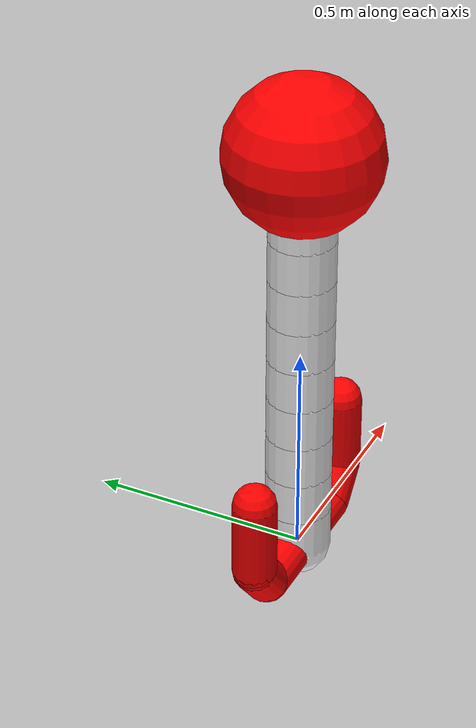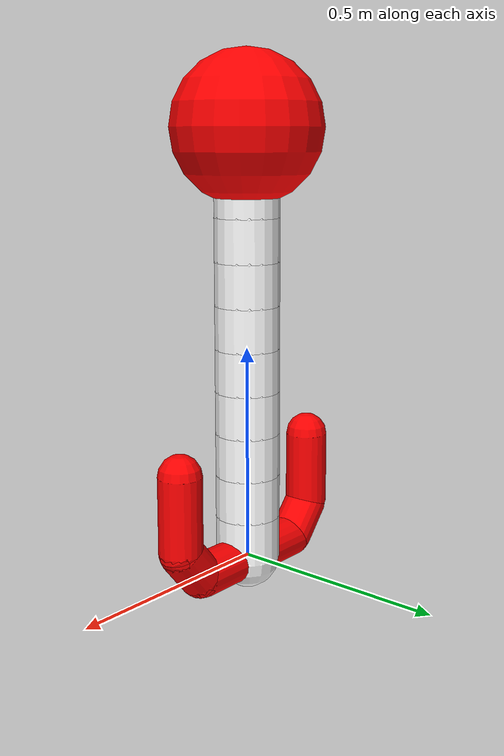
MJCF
<mujoco model="catch-me">
  <compiler coordinate="local" inertiafromgeom="true"/>
  <default>
    <joint damping="0.05" stiffness="0.1"/>
    <geom contype="1" conaffinity="1" friction="1 0.1 0.1" rgba="0.7 0.7 0 1"/>
  </default>
  <option gravity="1e-5 0 -9.81" integrator="RK4" timestep="0.001"/>
  <size nstack="3000"/>
  <worldbody>
    <camera name="rgb" mode="fixed" pos="0 -4 0.0" euler="90 0 0"/>
    <!-- pos here acts like the origin of the cup -->
    <body name="cup" pos="0 0 0">
<!--      Shape of cup inspired by https://github.com/deepmind/dm_control/blob/master/dm_control/suite/ball_in_cup.xml-->
      <joint name="cup_sliderx" axis="1 0 0" limited="true" margin="0.01" pos="0 0 0" range="-20 20" stiffness="0" type="slide"/>
      <site name="cup_site" pos="0 0 0." size="0.01 0.01"/>
      <geom name="cup_collision_site" type="sphere" pos="0 0 0.08" size="0.01 0.01" rgba="1 1 1 0" mass="0.01" contype="2" conaffinity="2"/>
      <geom name="cup_base" type="capsule" pos="0 0 0" quat="0.707 0 0.707 0" size="0.05 0.1625" rgba="1 0 0 1" mass=".5" contype="2" conaffinity="2"/>
      <geom name="cup_left1" type="capsule" fromto="0.1625 0 0 0.225 0 0.075" size="0.05" rgba="1 0 0 1" mass=".25" contype="2" conaffinity="2"/>
      <geom name="cup_right1" type="capsule" fromto="-0.1625 0 0 -0.225 0 0.075" size="0.05" rgba="1 0 0 1" mass=".25" contype="2" conaffinity="2"/>
      <geom name="cup_left2" type="capsule" fromto="0.225 0 0.075 0.225 0 0.25" size="0.05" rgba="1 0 0 1" mass=".25" contype="2" conaffinity="2"/>
      <geom name="cup_right2" type="capsule" fromto="-0.225 0 0.075 -0.225 0 0.25" size="0.05" rgba="1 0 0 1" mass=".25" contype="2" conaffinity="2"/>
      <body name="pole1" pos="0 0 0">
        <joint axis="0 1 0" name="hinge" pos="0 0 0" type="hinge" stiffness="0"/>
<!--          contype and conaffinity here are different at 0 to prevent collision between Ball and first rope link near end of task completion-->
<!--          without this ball will not make contact with base-->
        <geom fromto="0 0 0 0 0 0.1" name="gpole1" rgba="1 1 1 1" size="0.075 0.05" mass="0.05" type="capsule" contype="0" conaffinity="0"/>
        <body name="pole2" pos="0 0 0.1">
          <joint axis="0 1 0" name="hinge2" pos="0 0 0" type="hinge"/>
          <geom fromto="0 0 0 0 0 0.1" name="gpole2" rgba="1 1 1 1" size="0.075 0.05" mass="0.05" type="capsule"/>
          <body name="pole3" pos="0 0 0.1">
            <joint axis="0 1 0" name="hinge3" pos="0 0 0" type="hinge"/>
            <geom fromto="0 0 0 0 0 0.1" name="gpole3" rgba="1 1 1 1" size="0.075 0.05" mass="0.05" type="capsule"/>
            <body name="pole4" pos="0 0 0.1">
              <joint axis="0 1 0" name="hinge4" pos="0 0 0" type="hinge"/>
              <geom fromto="0 0 0 0 0 0.1" name="gpole4" rgba="1 1 1 1" size="0.075 0.05" mass="0.05" type="capsule"/>
               <body name="pole5" pos="0 0 0.1">
              <joint axis="0 1 0" name="hinge5" pos="0 0 0" type="hinge"/>
              <geom fromto="0 0 0 0 0 0.1" name="gpole5" rgba="1 1 1 1" size="0.075 0.05" mass="0.05" type="capsule"/>
                 <body name="pole6" pos="0 0 0.1">
                   <joint axis="0 1 0" name="hinge6" pos="0 0 0" type="hinge"/>
                   <geom fromto="0 0 0 0 0 0.1" name="gpole6" rgba="1 1 1 1" size="0.075 0.05" mass="0.05" type="capsule"/>
                     <body name="pole7" pos="0 0 0.1">
                      <joint axis="0 1 0" name="hinge7" pos="0 0 0" type="hinge"/>
                      <geom fromto="0 0 0 0 0 0.1" name="gpole7" rgba="1 1 1 1" size="0.075 0.05" mass="0.05" type="capsule"/>
                        <body name="pole8" pos="0 0 0.1">
                        <joint axis="0 1 0" name="hinge8" pos="0 0 0" type="hinge"/>
                        <geom fromto="0 0 0 0 0 0.1" name="gpole8" rgba="1 1 1 1" size="0.075 0.05" mass="0.05" type="capsule"/>
                        <body name="pole9" pos="0 0 0.1">
                          <joint axis="0 1 0" name="hinge9" pos="0 0 0" type="hinge"/>
                          <geom fromto="0 0 0 0 0 0.1" name="gpole9" rgba="1 1 1 1" size="0.075 0.05" mass="0.05" type="capsule"/>
                            <body name="pole10" pos="0 0 0.1">
                              <joint axis="0 1 0" name="hinge10" pos="0 0 0" type="hinge"/>
                              <geom fromto="0 0 0 0 0 0.1" name="gpole10" rgba="1 1 1 1" size="0.075 0.05" mass="0.05" type="capsule"/>
                              <body name="ball" pos="0 0 0.1">
                                <geom type="sphere" rgba="1 0 0 1" mass="1." size="0.175 0.175" name="gball" contype="3" conaffinity="3"/>
                                <site name="ball_site" pos="0 0 0." size="0.01 0.01"/>
                              </body>
                            </body>
                          </body>
                        </body>
                      </body>
                      </body>
                    </body>
                  </body>
                </body>
            </body>
          </body>
        </body>
  </worldbody>
  <actuator>
    <motor joint="cup_sliderx" name="cup_actuatorx" ctrllimited="true" ctrlrange="-1 1" gear="40"/>
  </actuator>
</mujoco>
